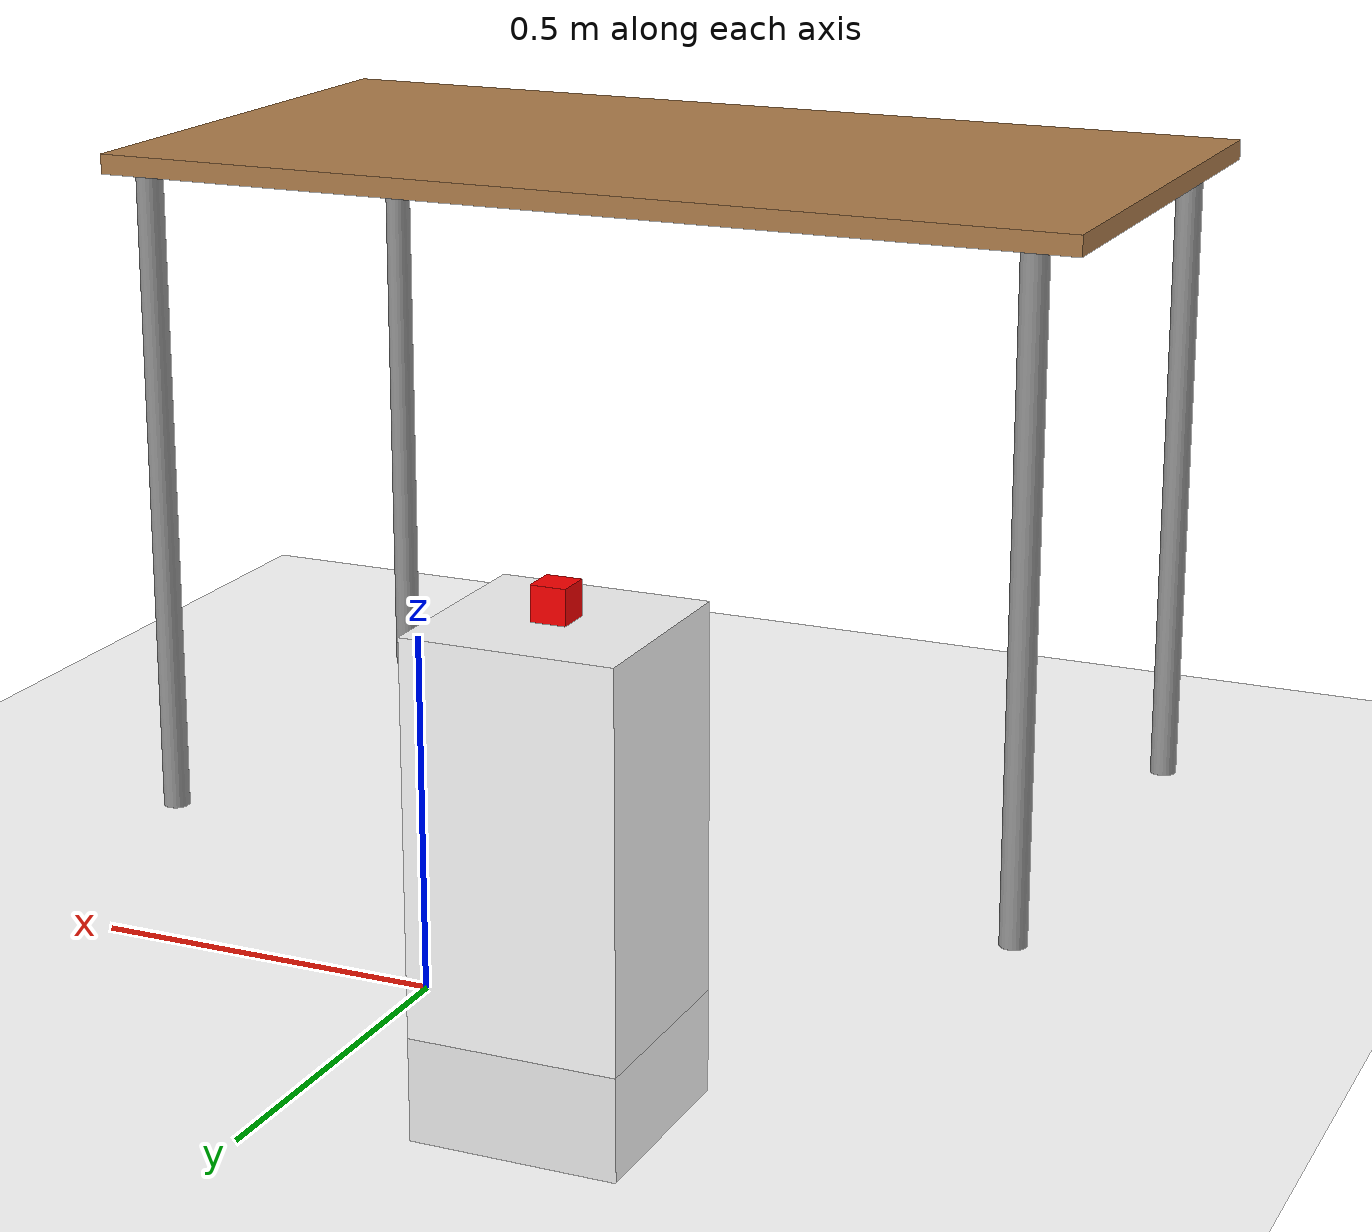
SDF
<?xml version="1.0" ?>
<sdf version="1.4">
  <world name="default">
    <include>
      <uri>model://ground_plane</uri>
    </include>
    <include>
      <uri>model://sun</uri>
    </include>
    <include>
      <uri>model://table</uri>
      <name>table</name>
      <pose>0.0 -0.84 0 0 0 0</pose>
    </include>

    <!-- 添加适合高度的白色平台 -->
    <model name="white_platform">
      <static>true</static>
      <pose>-0.2 0.0 0.2 0 0 0</pose>
      <link name="link">
        <collision name="collision">
          <geometry>
            <box>
              <size>0.3 0.3 0.7</size>
            </box>
          </geometry>
        </collision>
        <visual name="visual">
          <geometry>
            <box>
              <size>0.3 0.3 0.7</size>
            </box>
          </geometry>
          <material>
            <ambient>1 1 1 1</ambient>
            <diffuse>1 1 1 1</diffuse>
            <specular>0.1 0.1 0.1 1</specular>
          </material>
        </visual>
      </link>
    </model>

    <!-- 添加红色小方块 -->
    <model name="red_cube">
      <pose>-0.2 0.0 0.575 0 0 0</pose>
      <link name="link">
        <inertial>
          <mass>0.1</mass>
          <inertia>
            <ixx>0.000166667</ixx>
            <iyy>0.000166667</iyy>
            <izz>0.000166667</izz>
          </inertia>
        </inertial>
        <collision name="collision">
          <geometry>
            <box>
              <size>0.05 0.05 0.05</size>
            </box>
          </geometry>
          <surface>
            <friction>
              <ode>
                <mu>1.0</mu>
                <mu2>1.0</mu2>
              </ode>
            </friction>
            <contact>
              <ode>
                <kp>10000.0</kp>
                <kd>1.0</kd>
              </ode>
            </contact>
          </surface>
        </collision>
        <visual name="visual">
          <geometry>
            <box>
              <size>0.05 0.05 0.05</size>
            </box>
          </geometry>
          <material>
            <ambient>1 0 0 1</ambient>
            <diffuse>1 0 0 1</diffuse>
            <specular>0.1 0.1 0.1 1</specular>
          </material>
        </visual>
      </link>
    </model>

    <physics type="ode">
      <max_step_size>0.001</max_step_size>
      <real_time_factor>1</real_time_factor>
      <real_time_update_rate>1000</real_time_update_rate>
      <!-- 恢复重力，否则方块会悬浮 -->
      <gravity>0 0 -9.81</gravity>
    </physics>

  </world>
</sdf>

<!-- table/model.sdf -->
<sdf version="1.5">
  <model name="table">
    <static>true</static>
    <link name="link">
      <collision name="surface">
        <pose>0 0 1.0 0 0 0</pose>
        <geometry>
          <box>
            <size>1.5 0.8 0.03</size>
          </box>
        </geometry>
        <surface>
          <friction>
            <ode>
              <mu>0.6</mu>
              <mu2>0.6</mu2>
            </ode>
          </friction>
        </surface>
      </collision>
      <visual name="visual1">
        <pose>0 0 1.0 0 0 0</pose>
        <geometry>
          <box>
            <size>1.5 0.8 0.03</size>
          </box>
        </geometry>
        <material>
          <script>
            <uri>model://media/materials/scripts/gazebo.material</uri>
            <name>Gazebo/Wood</name>
          </script>
        </material>
      </visual>
      <collision name="front_left_leg">
        <pose>0.68 0.38 0.5 0 0 0</pose>
        <geometry>
          <cylinder>
            <radius>0.02</radius>
            <length>1.0</length>
          </cylinder>
        </geometry>
      </collision>
      <visual name="front_left_leg">
        <pose>0.68 0.38 0.5 0 0 0</pose>
        <geometry>
          <cylinder>
            <radius>0.02</radius>
            <length>1.0</length>
          </cylinder>
        </geometry>
        <material>
          <script>
            <uri>model://media/materials/scripts/gazebo.material</uri>
            <name>Gazebo/Grey</name>
          </script>
        </material>
      </visual>
      <collision name="front_right_leg">
        <pose>0.68 -0.38 0.5 0 0 0</pose>
        <geometry>
          <cylinder>
            <radius>0.02</radius>
            <length>1.0</length>
          </cylinder>
        </geometry>
      </collision>
      <visual name="front_right_leg">
        <pose>0.68 -0.38 0.5 0 0 0</pose>
        <geometry>
          <cylinder>
            <radius>0.02</radius>
            <length>1.0</length>
          </cylinder>
        </geometry>
        <material>
          <script>
            <uri>model://media/materials/scripts/gazebo.material</uri>
            <name>Gazebo/Grey</name>
          </script>
        </material>
      </visual>
      <collision name="back_right_leg">
        <pose>-0.68 -0.38 0.5 0 0 0</pose>
        <geometry>
          <cylinder>
            <radius>0.02</radius>
            <length>1.0</length>
          </cylinder>
        </geometry>
      </collision>
      <visual name="back_right_leg">
        <pose>-0.68 -0.38 0.5 0 0 0</pose>
        <geometry>
          <cylinder>
            <radius>0.02</radius>
            <length>1.0</length>
          </cylinder>
        </geometry>
        <material>
          <script>
            <uri>model://media/materials/scripts/gazebo.material</uri>
            <name>Gazebo/Grey</name>
          </script>
        </material>
      </visual>
      <collision name="back_left_leg">
        <pose>-0.68 0.38 0.5 0 0 0</pose>
        <geometry>
          <cylinder>
            <radius>0.02</radius>
            <length>1.0</length>
          </cylinder>
        </geometry>
      </collision>
      <visual name="back_left_leg">
        <pose>-0.68 0.38 0.5 0 0 0</pose>
        <geometry>
          <cylinder>
            <radius>0.02</radius>
            <length>1.0</length>
          </cylinder>
        </geometry>
        <material>
          <script>
            <uri>model://media/materials/scripts/gazebo.material</uri>
            <name>Gazebo/Grey</name>
          </script>
        </material>
      </visual>
    </link>
  </model>
</sdf>
